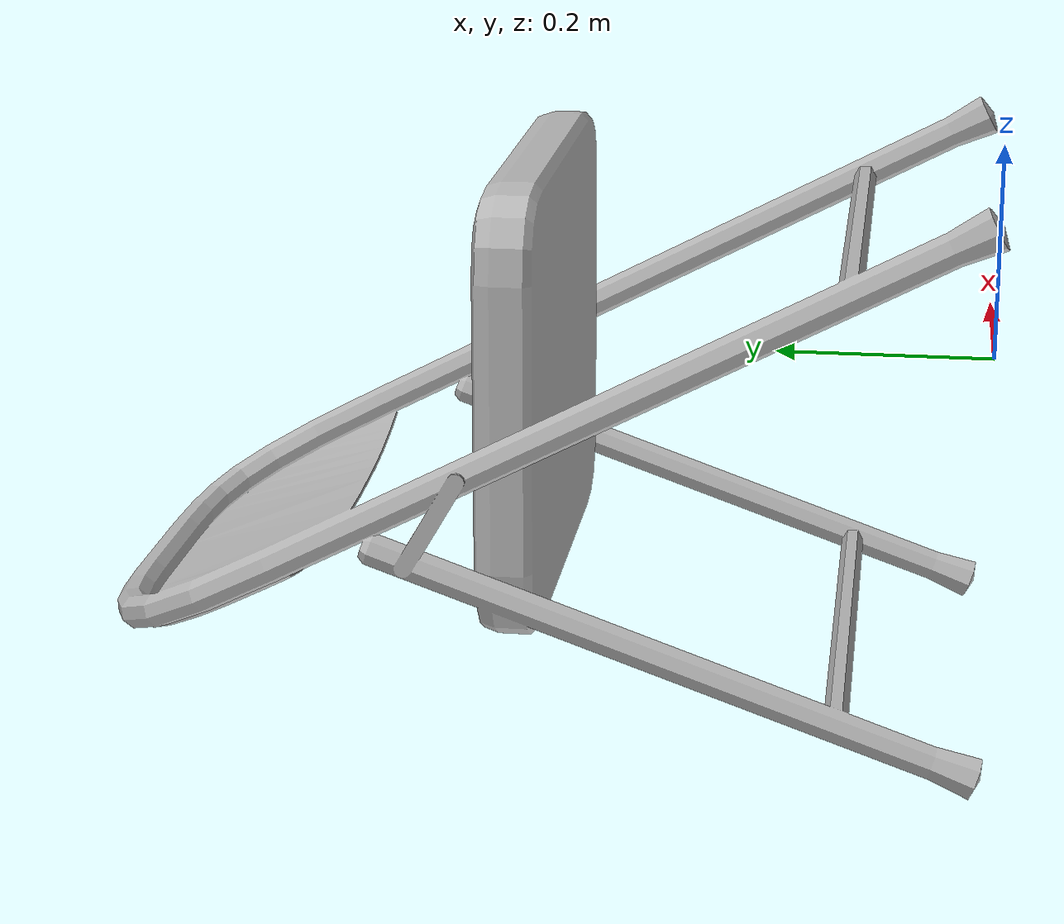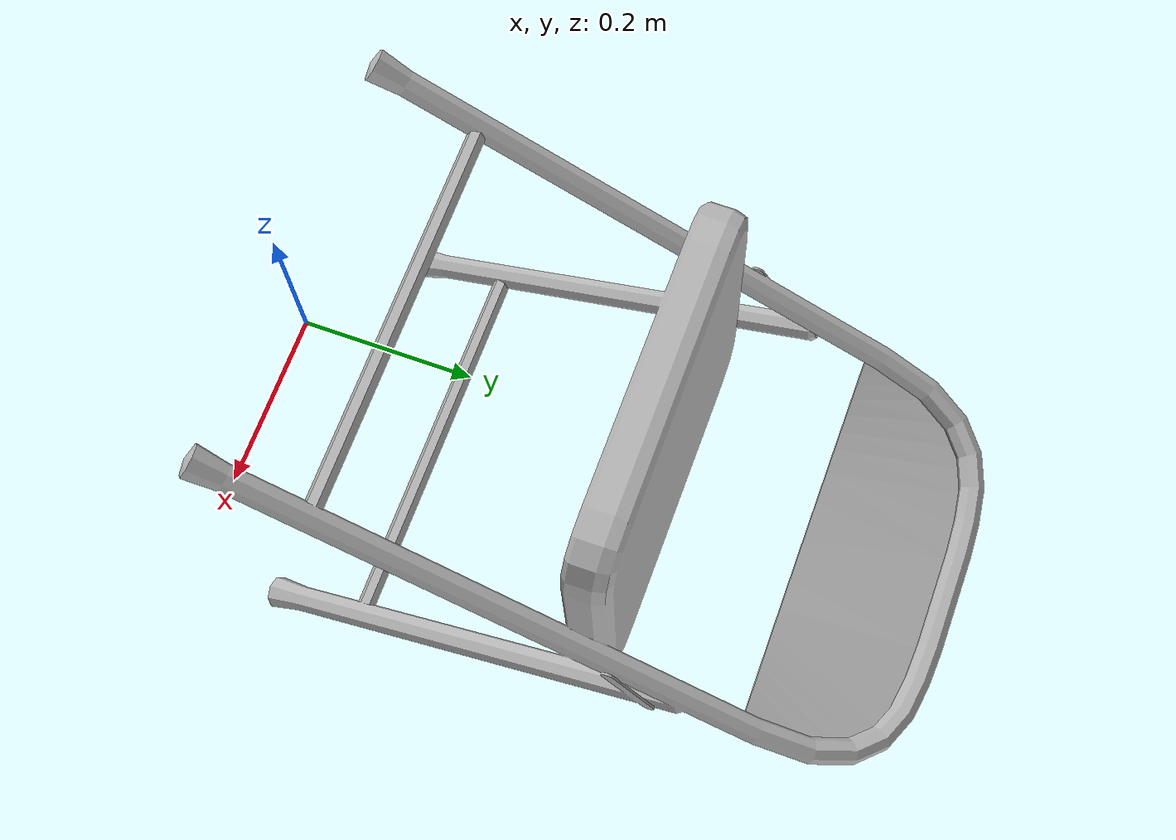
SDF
<sdf version="1.6">
    <model name="foldable_chair">
        <static>true</static>
        <link name="base_link">
            <visual name="visual">
                <geometry>
                    <mesh>
                        <scale>0.1 0.1 0.1</scale>
                        <uri>mesh/foldable_chair.obj</uri>
                    </mesh>
                </geometry>
            </visual>
            <collision name="collision">
                <pose>0 0.05 0.4 0 0 0</pose>
                <geometry>
                    <box>
                        <size>0.5 0.5 0.8</size>
                    </box>
                </geometry>
            </collision>
        </link>
    </model>
</sdf>
